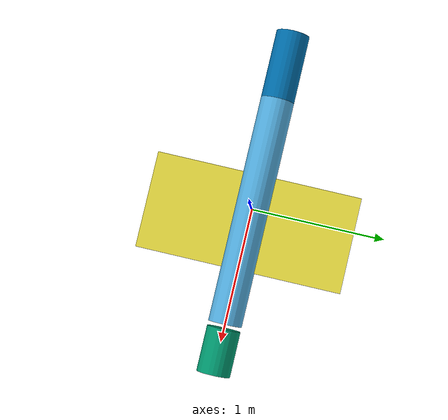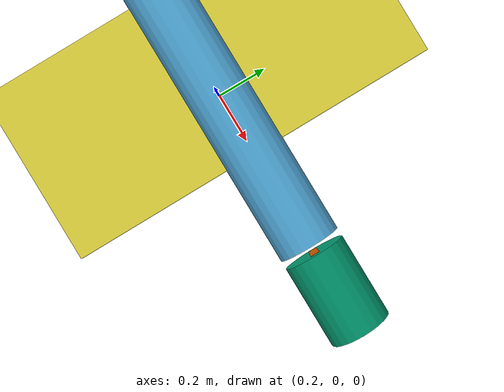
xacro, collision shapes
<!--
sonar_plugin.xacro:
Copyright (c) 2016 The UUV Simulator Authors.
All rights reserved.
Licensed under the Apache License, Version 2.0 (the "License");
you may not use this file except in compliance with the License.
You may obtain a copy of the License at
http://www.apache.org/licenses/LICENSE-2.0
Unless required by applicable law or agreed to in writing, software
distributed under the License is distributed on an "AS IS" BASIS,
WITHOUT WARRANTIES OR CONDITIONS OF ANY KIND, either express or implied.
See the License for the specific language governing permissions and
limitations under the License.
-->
<?xml version="1.0"?>
<robot name="model_with_plugins"
       xmlns:xacro="http://www.ros.org/wiki/xacro">
  <xacro:include filename="$(find auv2000_description)/urdf/model.xacro" />
  <xacro:include filename="$(find auv2000_gazebo_simulation)/urdf/dynamics_plugin.xacro" />
  <xacro:include filename="$(find auv2000_gazebo_simulation)/urdf/thrusters_plugin.xacro" />
  <xacro:include filename="$(find auv2000_gazebo_simulation)/urdf/gps_plugin.xacro" />
  <xacro:include filename="$(find auv2000_gazebo_simulation)/urdf/imu_plugin.xacro" />
  <xacro:include filename="$(find auv2000_gazebo_simulation)/urdf/magnet_plugin.xacro" />
  <xacro:include filename="$(find auv2000_gazebo_simulation)/urdf/dvl_plugin.xacro" />
  <xacro:include filename="$(find auv2000_gazebo_simulation)/urdf/rudder_plugin.xacro" />
  <xacro:include filename="$(find auv2000_gazebo_simulation)/urdf/mass_shifter_plugin.xacro" />
  <xacro:include filename="$(find auv2000_gazebo_simulation)/urdf/gps_ins_dvl.xacro" />
  <xacro:include filename="$(find auv2000_gazebo_simulation)/urdf/pressure_sensor_plugin.xacro" />
  <xacro:include filename="$(find auv2000_gazebo_simulation)/urdf/arm2_plugin.xacro" />
  <xacro:include filename="$(find auv2000_gazebo_simulation)/urdf/arm1_plugin.xacro" />
  <xacro:include filename="$(find auv2000_gazebo_simulation)/urdf/sonar_plugin.xacro" />
  <xacro:include filename="$(find auv2000_gazebo_simulation)/urdf/irm1_plugin.xacro" />
  <xacro:include filename="$(find auv2000_gazebo_simulation)/urdf/irm2_plugin.xacro" />
  <xacro:include filename="$(find auv2000_gazebo_simulation)/urdf/piston_plugin.xacro" />

  <xacro:forward_multibeam_sonar_m450_130
      namespace="sonar" parent_link="base_link" >
        <origin xyz="0.9 0 0.23" rpy="0 0 0" />
  </xacro:forward_multibeam_sonar_m450_130>

   <gazebo>
  		<plugin name="gazebo_ros_control" filename="libgazebo_ros_control.so">
      	  <robotNamespace>/auv</robotNamespace>
 		 </plugin>
	</gazebo>

</robot>

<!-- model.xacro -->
<robot name="model"   xmlns:xacro="http://www.ros.org/wiki/xacro">

  <xacro:include filename="$(find auv2000_description)/urdf/base.xacro" />
  <xacro:include filename="$(find auv2000_description)/urdf/nose.xacro" />
  <xacro:include filename="$(find auv2000_description)/urdf/wing.xacro" />
  <xacro:include filename="$(find auv2000_description)/urdf/tail.xacro" />
  <xacro:include filename="$(find auv2000_description)/urdf/dvl.xacro" />
  <xacro:include filename="$(find auv2000_description)/urdf/propeller.xacro" />
  <xacro:include filename="$(find auv2000_description)/urdf/rudder.xacro" />
  <xacro:include filename="$(find auv2000_description)/urdf/mass_shifter.xacro" />
  <xacro:include filename="$(find auv2000_description)/urdf/irm1.xacro" />
  <xacro:include filename="$(find auv2000_description)/urdf/irm2.xacro" />
  <xacro:include filename="$(find auv2000_description)/urdf/piston.xacro" />
   <xacro:include filename="$(find auv2000_description)/urdf/gps_dvl_ins.xacro" />

</robot>

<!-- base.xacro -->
<robot name="base"
       xmlns:xacro="http://www.ros.org/wiki/xacro">
<!-- Written by Ngo An Thuyen HCMUT - ViamLab 3-15-2021-->
<!-- FOOTPRINT -->
  <link name="footprint_link" >
   <inertial>
      <mass value="0.0001" />
      <origin xyz="0 0 0" />
      <inertia ixx="0.0001" ixy="0.0" ixz="0.0"
                iyy="0.0001" iyz="0.0"
                izz="0.0001" />
  </inertial>
        <visual>
            <origin xyz="0 0 0" rpy="0 0 0" />
            <geometry>
                <box size="0.001 0.001 0.001" />
            </geometry>
        </visual>
   </link>
<!-- BASE -->
  <link name="base_link">
    <visual>
      <geometry>
        <mesh filename="package://auv2000_description/dae/hull.dae"/>
      </geometry>

    </visual>
    <!-- AUV Hull -->
    <collision name="Hull">
      <origin xyz="0 0 0" rpy="0 1.570796327 0" />
      <geometry>
        <cylinder length="1.729" radius="0.125" />
      </geometry>
    </collision>

    <inertial>
          <mass value="62.075930259"/>
      <origin xyz="0.155 0 0" rpy=" 0 0 0"/>
      <inertia ixx="0.55947" ixy="0.0" ixz="0.0"
               iyy="15.7677"   iyz="0.0"
               izz="15.7759"/>
    </inertial>
  </link>

  <joint name="base_joint" type ="fixed">
    <parent link="footprint_link"/>
    <child link="base_link"/>
  </joint>

</robot>

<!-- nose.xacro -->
<robot name="nose"
       xmlns:xacro="http://www.ros.org/wiki/xacro">
<!-- Written by Ngo An Thuyen HCMUT - ViamLab 3-15-2021-->

<!-- AUV NOSE -->
  <link name="nose_link">
    <visual>
      <geometry>
        <mesh filename="package://auv2000_description/dae/nose.dae"/>
      </geometry>
    </visual>
    <!-- AUV NOSE -->
    <collision name="NOSE">
      <origin xyz="0 0 0" rpy="0 1.570796327 0" />
      <geometry>
        <cylinder length="0.340" radius="0.125" />
      </geometry>
    </collision>

    <inertial>
      <origin xyz="0 0 0" rpy=" 0 0 0"/>
      <mass value="3.601474921"/>
      <inertia ixx="0.0262728729" ixy="0.0" ixz="0.0"
               iyy="0.3322871894" iyz="0.0"
               izz="0.3345124239"/>
    </inertial>
  </link>

  <joint name="nose_joint" type ="fixed">
    <origin xyz="1.07 0 0" rpy="0 0 0" />
    <parent link="base_link"/>
    <child link="nose_link"/>
  </joint>

</robot>

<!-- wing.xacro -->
<robot name="wing"
       xmlns:xacro="http://www.ros.org/wiki/xacro">
<!-- Written by Ngo An Thuyen HCMUT - ViamLab 3-15-2021-->

<!-- AUV NOSE -->
  <link name="wing_link">
    <visual>
      <geometry>
        <mesh filename="package://auv2000_description/dae/wing.dae"/>
      </geometry>
    </visual>
    <!-- AUV WING/FIN -->
    <collision name="WING">
      <origin xyz="0.22 0 0" rpy="0 0 0" />
      <geometry>
        <box size ="0.72 1.545 0.024" />
      </geometry>
    </collision>

    <inertial>
      <origin xyz="0 0 0" rpy=" 0 0 0"/>
      <mass value="2.860829211"/>
      <inertia ixx="0.628640291364812" ixy="0.0" ixz="0.0"
               iyy="2.952798617930214" iyz="0.0"
               izz="3.581216302633036"/>
    </inertial>
  </link>

  <joint name="wing_joint" type ="fixed">
    <origin xyz="-0.12 0 0" rpy="0 0 0" />
    <parent link="base_link"/>
    <child link="wing_link"/>
  </joint>

</robot>

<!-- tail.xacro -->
<robot name="tail"
       xmlns:xacro="http://www.ros.org/wiki/xacro">
<!-- Written by Ngo An Thuyen HCMUT - ViamLab 3-15-2021-->

<!-- AUV NOSE -->
  <link name="tail_link">
    <visual>
      <geometry>
        <mesh filename="package://auv2000_description/dae/tail.dae"/>
      </geometry>
    </visual>
    <!-- AUV WING/FIN -->
    <collision name="TAIl">
      <origin xyz="0 0 -0.035" rpy="0 1.57 0" />
      <geometry>
        <cylinder length="0.513" radius="0.125" />
      </geometry>
    </collision>

    <inertial>
      <origin xyz="0 0 0" rpy=" 0 0 0"/>
      <mass value="7.676298734"/>
      <inertia ixx="0.043990227443773" ixy="0.0" ixz="0.0"
               iyy="8.098227827004284" iyz="0.0"
               izz="8.079481040403310"/>
    </inertial>
  </link>

  <joint name="tail_joint" type ="fixed">
    <origin xyz="-1.09 0 0.035" rpy="0 0 0" />
    <parent link="base_link"/>
    <child link="tail_link"/>
  </joint>

</robot>

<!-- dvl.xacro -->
<robot name="dvl"
       xmlns:xacro="http://www.ros.org/wiki/xacro">
<!-- Written by Ngo An Thuyen HCMUT - ViamLab 3-15-2021-->

<!-- AUV DVL -->
  <link name="dvl_link">
    <visual>
      <geometry>
        <mesh filename="package://auv2000_description/dae/dvl.dae"/>
      </geometry>
    </visual>
    <!-- AUV DVL -->
    <collision name="DVL">
      <origin xyz="0 0 0" rpy="0 3.14 0" />
      <geometry>
        <cylinder length="0.174" radius="0.063" />
      </geometry>
    </collision>

    <inertial>
      <origin xyz="0 0 0" rpy=" 0 0 0"/>
      <mass value="2.91"/>
      <inertia ixx="0.059655" ixy="0.0" ixz="0.0"
               iyy="0.0110169848022" iyz="0.0"
               izz="0.0617742407073"/>
    </inertial>
  </link>

  <joint name="dvl_joint" type ="fixed">
    <origin xyz="0.96 0 -0.01" rpy="0 3.14 0" />
    <parent link="base_link"/>
    <child link="dvl_link"/>
  </joint>

</robot>

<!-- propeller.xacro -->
<robot name="propeller"
       xmlns:xacro="http://www.ros.org/wiki/xacro">
<!-- Written by Ngo An Thuyen HCMUT - ViamLab 3-15-2021-->

<!-- AUV PROPELLER -->
  <link name="propeller_link">
    <visual>
      <geometry>
        <mesh filename="package://auv2000_description/dae/propeller.dae"/>
      </geometry>
    </visual>
    <!-- AUV PROPELLER -->
    <collision name="PROPELLER">
      <origin xyz="0 0 0" rpy="0 1.57 0" />
      <geometry>
        <cylinder length="0.052" radius="0.0625" />
      </geometry>
    </collision>

    <inertial>
      <origin xyz="0 0 0" rpy=" 0 0 0"/>
      <mass value="0.14"/>
      <inertia ixx="0.03536589225573" ixy="0.0" ixz="0.0"
               iyy="0.03619574038159" iyz="0.0"
               izz="0.00212609181311"/>
    </inertial>
  </link>

  <joint name="propeller_joint" type ="continuous">
    <axis rpy="0 0 0" xyz="1 0 0"/>
    <origin xyz="-1.225 0 0" rpy="0 0 0" />
    <parent link="base_link"/>
    <child link="propeller_link"/>
  </joint>

</robot>

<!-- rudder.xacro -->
<robot name="rudder"
       xmlns:xacro="http://www.ros.org/wiki/xacro">
<!-- Written by Ngo An Thuyen HCMUT - ViamLab 3-15-2021-->

<!-- AUV RUDDER -->
  <link name="rudder_link">
    <visual>
      <geometry>
        <mesh filename="package://auv2000_description/dae/rudder.dae"/>
      </geometry>
    </visual>
    <!-- AUV RUDDER -->
    <collision name="RUDDER">
      <origin xyz="0 0 0" rpy="0 0 3.14" />
      <geometry>
        <box size = "0.065 0.015 0.1" />
      </geometry>
    </collision>

    <inertial>
      <origin xyz="0 0 0" rpy=" 0 0 0"/>
      <mass value="0.086142809"/>
      <inertia ixx="0.00190754981851" ixy="0.0" ixz="0.0"
               iyy="0.00049855719697" iyz="0.0"
               izz="0.00237808757075"/>
    </inertial>
  </link>

  <joint name="rudder_joint" type ="revolute">
    <axis xyz="0 0 1"/>
    <limit effort="0" lower="-1.57" upper="1.57" velocity="0"/>
    <origin xyz="-1.295 0 0" rpy="0 0 3.14" />
    <parent link="base_link"/>
    <child link="rudder_link"/>
  </joint>

</robot>

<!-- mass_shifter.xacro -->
<robot name="mass_shifter"
       xmlns:xacro="http://www.ros.org/wiki/xacro">
<!-- Written by Ngo An Thuyen HCMUT - ViamLab 3-15-2021-->

<!-- AUV MASS SHIFTER -->
  <link name="mass_shifter_link">
    <visual>
      <geometry>
        <mesh filename="package://auv2000_description/dae/mass_shifter.dae"/>
      </geometry>
    </visual>
    <!-- AUV MASS SHIFTER -->
    <collision name="MASS_SHIFTER">
      <origin xyz="0 0 0" rpy="0 1.570796327 0" />
      <geometry>
        <cylinder length="0.087" radius="0.098" />
      </geometry>
    </collision>

    <inertial>
      <origin xyz="0 0 0" rpy=" 0 0 0"/>
      <mass value="7.388178972"/>
       <inertia ixx="0.044331057716505" ixy="0.0" ixz="0.0"
                iyy="2.599774330336140" iyz="0.0"
                izz="2.612228548561526"/>
    </inertial>
  </link>

  <joint name="mass_shifter_joint" type ="prismatic">
    <axis xyz = "1 0 0" />
    <origin xyz="0.0213 0 0" rpy="0 0 0" />
    <parent link="base_link"/>
    <child link="mass_shifter_link"/>

    <safety_controller k_position="100" k_velocity="100" soft_lower_limit="-0.2" soft_upper_limit="0.2"/>
    <limit effort="2000" lower="-0.2" upper="0.2" velocity="200"/>

  </joint>

  <transmission name="trans_mass_shifter">
    <type>transmission_interface/SimpleTransmission</type>
    <joint name="mass_shifter_joint">
        <hardwareInterface>hardware_interface/EffortJointInterface</hardwareInterface>
    </joint>
    <actuator name="motor_mass_shifter">
        <mechanicalReduction>1</mechanicalReduction>
    </actuator>
  </transmission>

</robot>

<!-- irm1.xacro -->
<robot name="irm1"
       xmlns:xacro="http://www.ros.org/wiki/xacro">
<!-- Written by Ngo An Thuyen HCMUT - ViamLab 3-15-2021-->

<!-- AUV INERTIA ROTARY MASS  1-->
  <link name="irm1_link">
    <visual>
      <geometry>
        <mesh filename="package://auv2000_description/dae/irm1.dae"/>
      </geometry>
    </visual>
    <!-- AUV INERTIA ROTARY MASS -->
    <collision name="IRM1">
      <origin xyz="0 0 0" rpy="0 1.570796327 0" />
      <geometry>
        <cylinder length="0.166" radius="0.079" />
      </geometry>
    </collision>

    <inertial>
      <origin xyz="0 0 -0.0626" rpy=" 0 0 0"/>
      <mass value="5.553972790"/>
      <inertia ixx="0.006657740236353" ixy="0.0" ixz="0.0"
               iyy="2.454678883017721" iyz="0.0"
               izz="2.455311107632614"/>
    </inertial>
  </link>

  <joint name="irm1_joint" type ="revolute">
    <origin xyz="0.625 0 0" rpy="0 0 0" />
    <parent link="base_link"/>
    <child link="irm1_link"/>
     <axis xyz = "1 0 0" />
    <safety_controller k_position="100" k_velocity="10000" soft_lower_limit="-0.53" soft_upper_limit="0.53"/>

    <limit lower="-0.53" upper="0.53" effort="1" velocity="1"/>
    <axis xyz = "1 0 0" />
  </joint>

    <transmission name="trans_irm_1">
    <type>transmission_interface/SimpleTransmission</type>
    <joint name="irm1_joint">
        <hardwareInterface>hardware_interface/EffortJointInterface</hardwareInterface>
    </joint>
    <actuator name="motor_irm1">
        <mechanicalReduction>1</mechanicalReduction>
    </actuator>
  </transmission>

  <gazebo reference="irm1_link">
        <turnGravityOff>false</turnGravityOff>
    </gazebo>

</robot>

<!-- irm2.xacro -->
<robot name="irm2"
       xmlns:xacro="http://www.ros.org/wiki/xacro">
<!-- Written by Ngo An Thuyen HCMUT - ViamLab 3-15-2021-->

<!-- AUV INERTIA ROTARY MASS  2 -->
  <link name="irm2_link">
    <visual>
      <geometry>
        <mesh filename="package://auv2000_description/dae/irm2.dae"/>
      </geometry>
    </visual>
    <!-- AUV INERTIA ROTARY MASS -->
    <collision name="IRM2">
      <origin xyz="0 0 0" rpy="0 1.570796327 0" />
      <geometry>
        <cylinder length="0.166" radius="0.079" />
      </geometry>
    </collision>

    <inertial>
      <origin xyz="0 0 -0.0626" rpy=" 0 0 0"/>
      <mass value="5.553972790"/>
      <inertia ixx="0.006657740236353" ixy="0.0" ixz="0.0"
               iyy="2.454678883017721" iyz="0.0"
               izz="2.455311107632614"/>
    </inertial>
  </link>

  <joint name="irm2_joint" type ="revolute">
    <origin xyz="-0.267 0 0" rpy="0 0 0" />
    <parent link="base_link"/>
    <child link="irm2_link"/>
    <safety_controller k_position="100" k_velocity="10000" soft_lower_limit="-0.53" soft_upper_limit="0.53"/>
    <limit lower="-0.53" upper="0.53" effort="1" velocity="1"/>
    <axis xyz = "1 0 0" />
  </joint>

    <transmission name="trans_irm_2">
    <type>transmission_interface/SimpleTransmission</type>
    <joint name="irm2_joint">
        <hardwareInterface>hardware_interface/EffortJointInterface</hardwareInterface>
    </joint>
    <actuator name="motor_irm2">
        <mechanicalReduction>1</mechanicalReduction>
    </actuator>
  </transmission>

</robot>

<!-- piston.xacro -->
<robot name="piston"
       xmlns:xacro="http://www.ros.org/wiki/xacro">
<!-- Written by Ngo An Thuyen HCMUT - ViamLab 4-2-2021-->

<!-- AUV  PISTON CYCLINDER (Ballast) -->
  <link name="piston_link">
    <visual>
      <geometry>
         <cylinder length="0.02" radius="0.08" />
      </geometry>
    </visual>
    <!-- AAUV  PISTON CYCLINDER (Ballast) -->
    <collision name="piston">
      <origin xyz="0 0 0" rpy="0 1.570796327 0" />
      <geometry>
        <cylinder length="0.02" radius="0.08" />
      </geometry>
    </collision>

    <inertial>
      <origin xyz="0 0 0" rpy=" 0 0 0"/>
      <mass value="0.0001"/>
      <inertia ixx="0.0001" ixy="0.0" ixz="0.0"
               iyy="0.0001" iyz="0.0"
               izz="0.0001"/>
    </inertial>
  </link>

  <joint name="piston_joint" type ="prismatic">
    <origin xyz="0.405 0 0" rpy="0 1.57 0" />
    <parent link="base_link"/>
    <child link="piston_link"/>
     <axis xyz = "0 0 1" />
    <safety_controller k_position="100" k_velocity="10000" soft_lower_limit="0" soft_upper_limit="0.08"/>

    <limit lower="0" upper="0.08" effort="0" velocity="0"/>
    <axis xyz = "0 0 1" />
  </joint>

</robot>

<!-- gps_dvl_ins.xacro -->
<robot name="imu"
       xmlns:xacro="http://www.ros.org/wiki/xacro">

<!-- GPS/INS -->
  <link name="gps_ins_link">
    <visual>
      <origin xyz="0 0 0" rpy="0 0 0" />
      <geometry>
        <box size="0.07 0.06 0.05" />
      </geometry>
    </visual>
    <collision>
      <origin xyz="0 0 0" rpy="0 0 0" />
      <geometry>
        <box size="0.07 0.06 0.05" />
      </geometry>
    </collision>
    <inertial>
      <mass value="0.068" />
      <origin xyz="0 0 0" />
            <inertia ixx="0.000006657740236353" ixy="0.0" ixz="0.0"
               iyy="0.00000002454678883017721" iyz="0.0"
               izz="0.0000000002455311107632614"/>
    </inertial>
  </link>

  <joint name="gps_ins_joint" type="fixed">
    <origin xyz="0 0.0 0" rpy="0 0 0" />
    <parent link="base_link" />
    <child link="gps_ins_link" />
  </joint>

  <link name="gps_ins_point_link" />

  <joint name="imu_point_joint" type="fixed">
    <origin xyz="0 0 0" rpy="${pi} 0 0" />
    <parent link="gps_ins_link" />
    <child link="gps_ins_point_link" />
  </joint>

</robot>

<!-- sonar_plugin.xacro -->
<robot xmlns:xacro="http://www.ros.org/wiki/xacro">

  <!-- Macro for a minimal collision block (for when you do not want collision block but gazebo needs one) -->
  <xacro:macro name="no_collision">
    <collision>
      <geometry>
        <cylinder length="${0.000001}" radius="${0.000001}" />
      </geometry>
      <origin xyz="0 0 0" rpy="0 ${0.5*pi} 0"/>
    </collision>
  </xacro:macro>

  <!-- Side scan sonar -->
  <xacro:macro name="sidescan_sonar" params="namespace parent_link suffix *origin">
    <xacro:multibeam_sonar
      namespace="${namespace}"
      suffix="${suffix}"
      parent_link="${parent_link}"
      topic="sss_${suffix}"
      mass="0.015"
      update_rate="2"
      samples="60"
      fov="${pi/3.0}"
      range_min="1.0"
      range_max="200.0"
      range_stddev="0.027"
      mesh="">
      <inertia ixx="0.00001" ixy="0.0" ixz="0.0" iyy="0.00001" iyz="0.0" izz="0.00001" />
      <xacro:insert_block name="origin" />
      <visual>
        <origin xyz="0 0 0" rpy="0 0 0"/>
        <geometry>
          <box size="0.001 0.001 0.001"/>
        </geometry>
      </visual>
    </xacro:multibeam_sonar>
  </xacro:macro>

  <!-- Inspired by m450-130: http://www.blueview.com/products/2d-imaging-sonar/m900-series/ -->
  <xacro:macro name="forward_multibeam_sonar_m450_130" params="namespace parent_link *origin">
    <xacro:multibeam_sonar
      namespace="${namespace}"
      suffix=""
      parent_link="${parent_link}"
      topic="sonar"
      mass="0.3"
      update_rate="10"
      samples="130"
      fov="2.27"
      range_min="1.0"
      range_max="100.0"
      range_stddev="0.027"
      mesh="">

      <inertia ixx="0.00001" ixy="0.0" ixz="0.0" iyy="0.00001" iyz="0.0" izz="0.00001" />
      <xacro:insert_block name="origin" />

      <visual>
        <geometry>
            <mesh filename="file://$(find uuv_sensor_ros_plugins)/meshes/m450-130.dae" scale="0.5 0.5 0.5"/>
        </geometry>
      </visual>

    </xacro:multibeam_sonar>
  </xacro:macro>

  <xacro:macro name="forward_multibeam_p900" params="namespace parent_link *origin">
    <xacro:multibeam_sonar
      namespace="${namespace}"
      suffix=""
      parent_link="${parent_link}"
      topic="sonar"
      mass="0.0"
      update_rate="15"
      samples="512"
      fov="1.5708"
      range_min="1.0"
      range_max="100.0"
      range_stddev="0.027"
      mesh="">
    </xacro:multibeam_sonar>
  </xacro:macro>

  <xacro:macro name="multibeam_sonar"
    params="namespace suffix parent_link topic mass update_rate
      samples fov range_min range_max range_stddev mesh
      *inertia *origin *visual">
    <!-- Sensor link -->
    <link name="${namespace}/sonar${suffix}_link">
      <inertial>
        <xacro:insert_block name="inertia" />
        <mass value="${mass}" />
        <origin xyz="0 0 0" rpy="0 0 0" />
      </inertial>

      <xacro:insert_block name="visual" />
      <xacro:no_collision/>
    </link>

  <joint name="${namespace}_sonar${suffix}_joint" type="fixed">
    <xacro:insert_block name="origin" />
    <parent link="${parent_link}" />
    <child link="${namespace}/sonar${suffix}_link" />
    <limit upper="0" lower="0" effort="0" velocity="0" />
    <axis xyz="1 0 0"/>
  </joint>

  <gazebo reference="${namespace}/sonar${suffix}_link">
    <sensor type="gpu_ray" name="sonar${suffix}">
      <pose>0 0 0 0 0 0</pose>
      <visualize>false</visualize>
      <update_rate>${update_rate}</update_rate>
      <ray>
        <scan>
          <horizontal>
            <samples>${samples}</samples>
            <resolution>1</resolution>
            <min_angle>-${0.5*fov}</min_angle>
            <max_angle>${0.5*fov}</max_angle>
          </horizontal>
        </scan>
        <range>
          <min>${range_min}</min>
          <max>${range_max}</max>
          <resolution>0.01</resolution>
        </range>
        <noise>
          <type>gaussian</type>
          <mean>0.0</mean>
          <stddev>${range_stddev}</stddev>
        </noise>
      </ray>
      <plugin name="sonar${suffix}_controller" filename="libgazebo_ros_gpu_laser.so">
        <topicName>${topic}</topicName>

        <frameName>sonar${suffix}_link</frameName>
      </plugin>
      <!-- TODO: Separate switchable sonar version in another macro -->
    </sensor>
  </gazebo>
  </xacro:macro>

  <xacro:macro name="forward_looking_sonar"
    params="namespace suffix parent_link topic mass update_rate
      samples fov width height *inertia *origin">
    <!-- Sensor link -->
    <link name="${namespace}/forward_sonar${suffix}_link">
      <inertial>
        <xacro:insert_block name="inertia" />
        <mass value="${mass}" />
        <origin xyz="0 0 0" rpy="0 0 0" />
      </inertial>
      <visual>
        <geometry>
          <mesh filename="file://$(find uuv_sensor_ros_plugins)/meshes/oe14-372.dae" scale="1 1 1"/>
        </geometry>
      </visual>
      <xacro:no_collision/>
    </link>

    <joint name="${namespace}_forward_sonar${suffix}_joint" type="fixed">
      <xacro:insert_block name="origin" />
      <parent link="${parent_link}" />
      <child link="${namespace}/forward_sonar${suffix}_link" />
      <limit upper="0" lower="0" effort="0" velocity="0" />
      <axis xyz="1 0 0"/>
    </joint>

    <gazebo reference="${namespace}/forward_sonar${suffix}_link">
      <sensor name="${namespace}/image_sonar" type="depth">
        <camera>
		  <horizontal_fov>${fov}</horizontal_fov>
          <image>
		    <width>${width}</width>
		    <height>${height}</height>
            <format>R8G8B8</format>
          </image>
          <clip>
            <near>0.1</near>
            <far>17</far>
          </clip>
          <save enabled="true">
            <path>/tmp/camera</path>
          </save>
        </camera>
	    <plugin filename="libimage_sonar_ros_plugin.so" name="forward_sonar${suffix}_controller">
		  <topicName>${topic}</topicName>
          <frameName>forward_sonar${suffix}_optical_frame</frameName>
          <pointCloudTopicName> point  </pointCloudTopicName>
        </plugin>
        <always_on>true</always_on>
	    <update_rate>${update_rate}</update_rate>
      </sensor>
    </gazebo>

	<joint name="${namespace}/forward_sonar${suffix}_joint" type="fixed">
      <origin xyz="0 0 0" rpy="${-pi/2} 0 ${-pi/2}"/>
      <parent link="${namespace}/forward_sonar${suffix}_link"/>
      <child link="${namespace}/forward_sonar${suffix}_optical_frame"/>
    </joint>

	<link name="${namespace}/forward_sonar${suffix}_optical_frame"/>
  </xacro:macro>

</robot>
